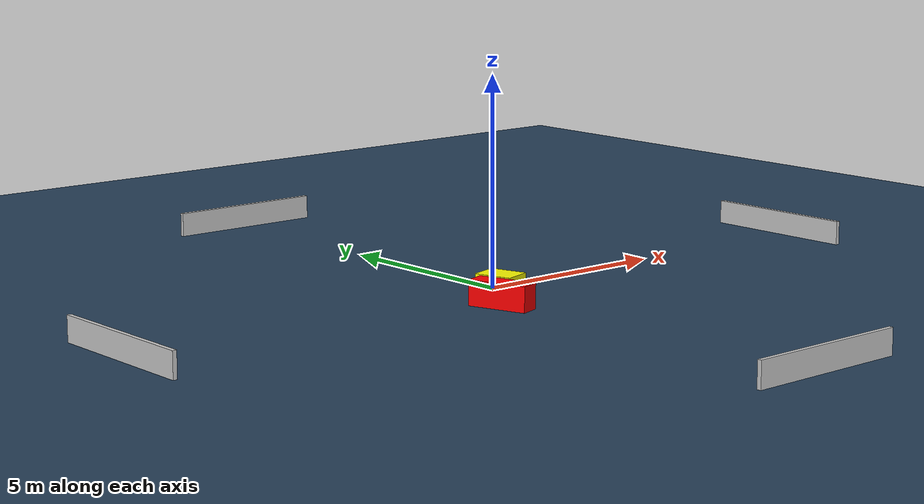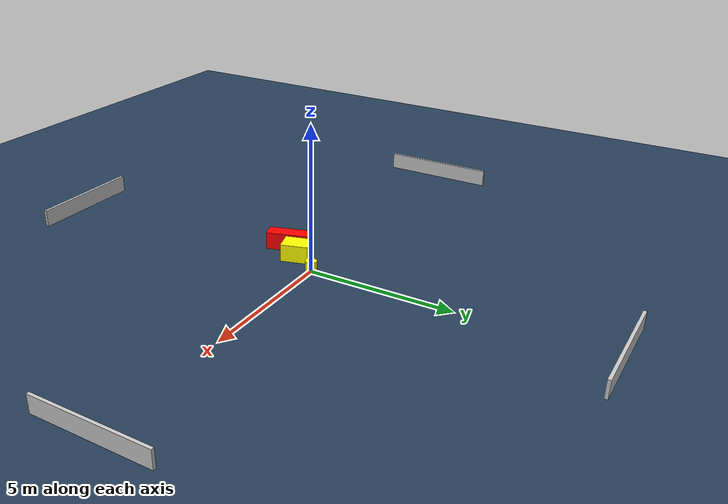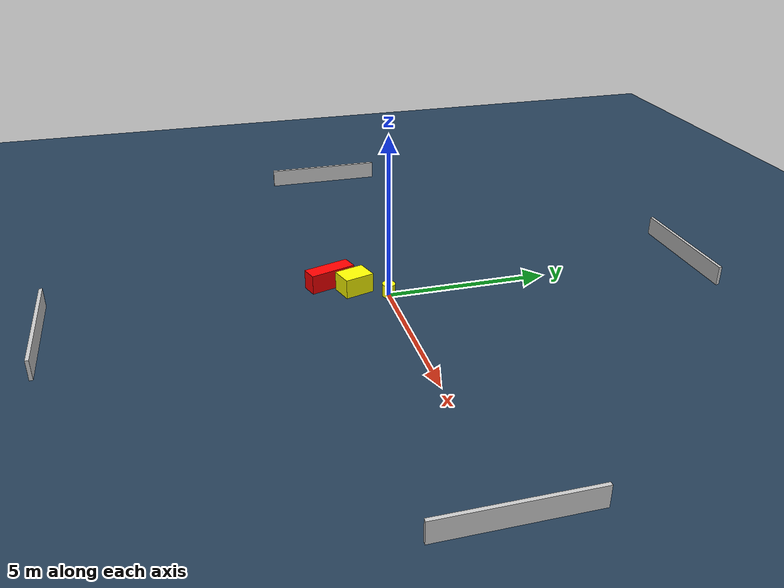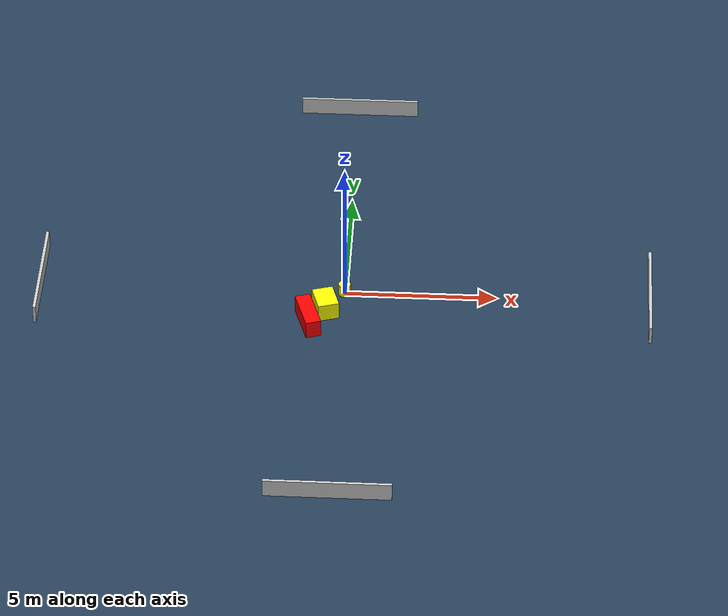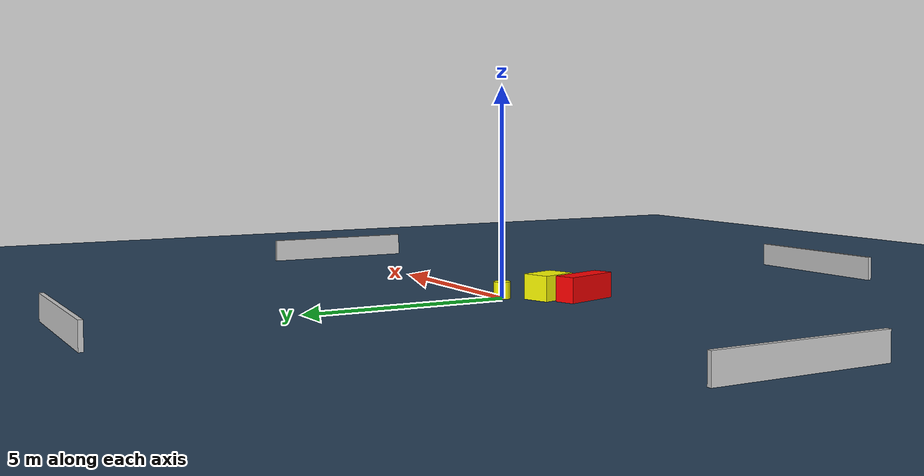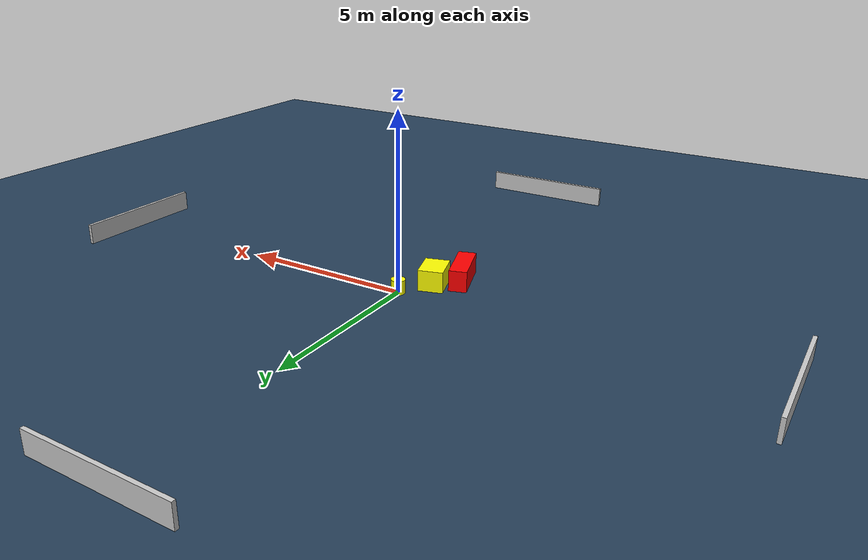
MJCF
<?xml version="1.0" ?>
<mujoco model="generated_environment">
  <option timestep="0.01" integrator="RK4" cone="elliptic"/>
  <default>
    <geom density="1"/>
  </default>
  <asset>
    <texture builtin="gradient" height="3072" name="skybox" rgb1="0.3 0.5 0.7" rgb2="0 0 0" type="skybox" width="512"/>
    <texture builtin="checker" height="300" name="groundplane" rgb1="0.2 0.3 0.4" rgb2="0.1 0.2 0.3" type="2d" width="300"/>
    <material name="groundplane" reflectance="0.2" texrepeat="5 5" texture="groundplane"/>
  </asset>
  <worldbody>
    <light dir="0 0 -1" directional="true" pos="0 0 1.5"/>
    <geom condim="3" friction="0.5 0.005 0.001" material="groundplane" name="floor" pos="0 0 0" size="0 0 0.05" type="plane"/>
    <body name="walls">
      <geom name="wall_1" condim="4" pos="-10.0 0.0 0.3" rgba="0.800000011920929 0.800000011920929 0.800000011920929 1.0" size="0.05 2.0 0.3" type="box"/>
      <geom name="wall_2" condim="4" pos="10.0 0.0 0.3" rgba="0.800000011920929 0.800000011920929 0.800000011920929 1.0" size="0.05 2.0 0.3" type="box"/>
      <geom name="wall_3" condim="4" pos="0.0 -10.0 0.3" rgba="0.800000011920929 0.800000011920929 0.800000011920929 1.0" size="2.0 0.05 0.3" type="box"/>
      <geom name="wall_4" condim="4" pos="0.0 10.0 0.3" rgba="0.800000011920929 0.800000011920929 0.800000011920929 1.0" size="2.0 0.05 0.3" type="box"/>
    </body>
    <body name="robot">
      <joint name="joint_x" type="slide" pos="0 0 0" axis="1 0 0"/>
      <joint name="joint_y" type="slide" pos="0 0 0" axis="0 1 0"/>
      <geom name="robot" type="cylinder" pos="0.0 0.0 0.2" size="0.2 0.2 0.0" mass="5.0" friction="1.0 0.005 0.0001" condim="4" rgba="1.0 1.0 0.0 1.0"/>
    </body>
    <body name="obstacle_1_movable">
      <geom name="obstacle_1_movable" condim="4" pos="-0.5788346405740732 -0.9290172696008339 0.3" euler="0 0 196.80398081253463" friction="0.0 0.005 0.001" rgba="1.0 1.0 0.0 1.0" size="0.3480728652100396 0.46090142957828845 0.3" type="box" mass="0.1"/>
      <joint type="free"/>
    </body>
    <body name="obstacle_2_static">
      <geom name="obstacle_2_static" condim="4" pos="-1.1111397612683278 -1.582545556176033 0.3" euler="0 0 287.69709659732627" friction="0.0 0.005 0.001" rgba="1.0 0.0 0.0 1.0" size="0.7241472932571964 0.2512999371455962 0.3" type="box"/>
    </body>
  </worldbody>
  <actuator>
    <motor name="actuator_x" joint="joint_x" gear="1" ctrlrange="-1 1"/>
    <motor name="actuator_y" joint="joint_y" gear="1" ctrlrange="-1 1"/>
  </actuator>
</mujoco>
